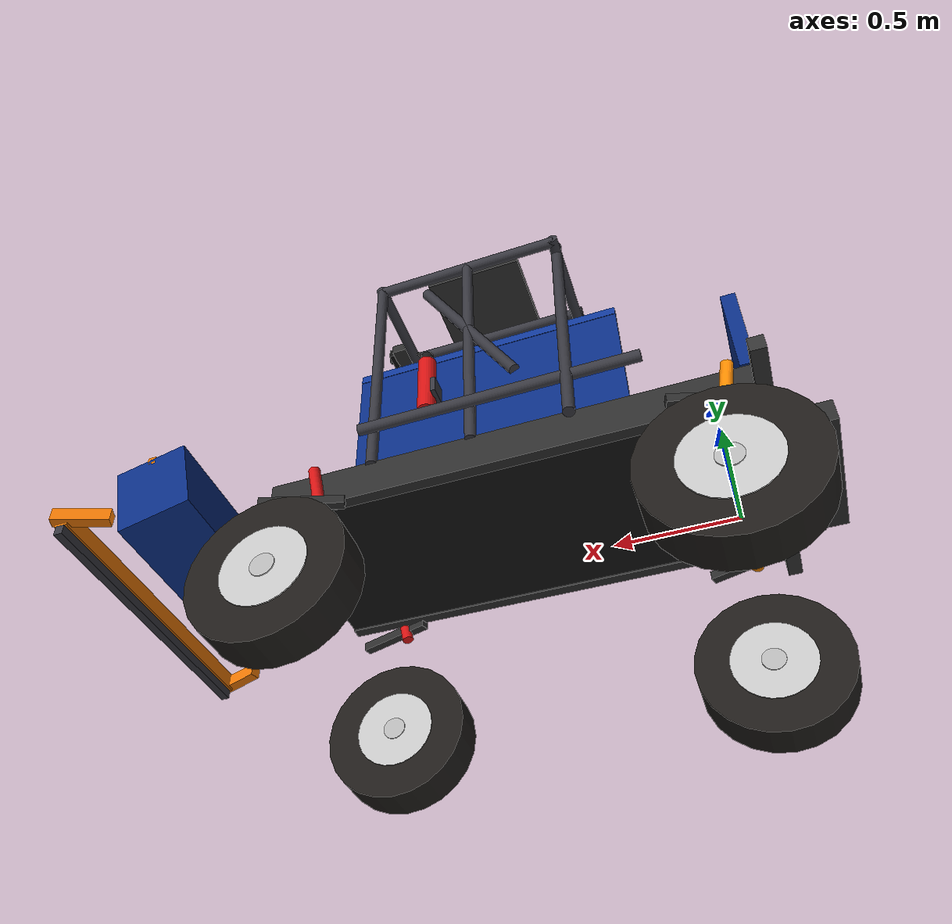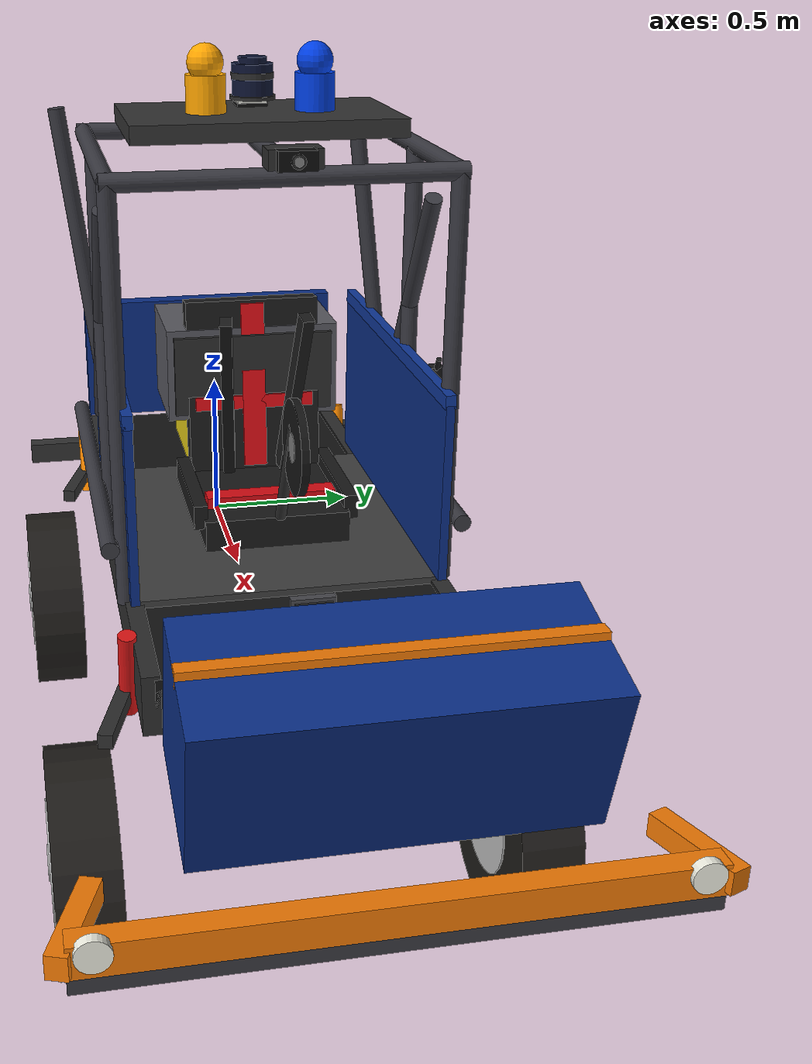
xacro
<?xml version="1.0"?>
<robot xmlns:xacro="http://www.ros.org/wiki/xacro" name="abaja_buggy">

  <!-- Color/material definitions (must be first) -->
  <xacro:include filename="$(find abaja_description)/urdf/materials.xacro"/>

  <!-- Chassis, roll cage, body, seat, beacons, electronics -->
  <xacro:include filename="$(find abaja_description)/urdf/chassis.xacro"/>

  <!-- Four wheels with steering and drive joints -->
  <xacro:include filename="$(find abaja_description)/urdf/wheels.xacro"/>

  <!-- Sensor mounts: camera, lidar, imu -->
  <xacro:include filename="$(find abaja_description)/urdf/sensors.xacro"/>

  <!-- Chassis -->
  <gazebo reference="chassis_link">
  </gazebo>

  <!-- Floor pan -->
  <gazebo reference="floor_pan_link">
  </gazebo>

  <!-- Body panels -->
  <gazebo reference="left_body_panel_link">
  </gazebo>
  <gazebo reference="right_body_panel_link">
  </gazebo>

  <!-- Roll cage elements -->
  <gazebo reference="roll_cage_front_hoop">
  </gazebo>
  <gazebo reference="roll_cage_rear_hoop">
  </gazebo>
  <gazebo reference="roll_cage_top_bar">
  </gazebo>
  <gazebo reference="roll_cage_left_pillar">
  </gazebo>
  <gazebo reference="roll_cage_right_pillar">
  </gazebo>
  <gazebo reference="roll_cage_left_rear_pillar">
  </gazebo>
  <gazebo reference="roll_cage_right_rear_pillar">
  </gazebo>
  <gazebo reference="roll_cage_left_side_bar">
  </gazebo>
  <gazebo reference="roll_cage_right_side_bar">
  </gazebo>

  <!-- Beacons -->
  <gazebo reference="asal_beacon_link">
  </gazebo>
  <gazebo reference="asal_beacon_dome">
  </gazebo>
  <gazebo reference="warning_beacon_link">
  </gazebo>
  <gazebo reference="warning_beacon_dome">
  </gazebo>

  <!-- Wheels -->
  <gazebo reference="front_left_wheel_link">
    <mu1>1.0</mu1>
    <mu2>1.0</mu2>
    <kp>1000000.0</kp>
    <kd>100.0</kd>
    <minDepth>0.001</minDepth>
  </gazebo>
  <gazebo reference="front_right_wheel_link">
    <mu1>1.0</mu1>
    <mu2>1.0</mu2>
    <kp>1000000.0</kp>
    <kd>100.0</kd>
    <minDepth>0.001</minDepth>
  </gazebo>
  <gazebo reference="rear_left_wheel_link">
    <mu1>1.0</mu1>
    <mu2>1.0</mu2>
    <kp>1000000.0</kp>
    <kd>100.0</kd>
    <minDepth>0.001</minDepth>
  </gazebo>
  <gazebo reference="rear_right_wheel_link">
    <mu1>1.0</mu1>
    <mu2>1.0</mu2>
    <kp>1000000.0</kp>
    <kd>100.0</kd>
    <minDepth>0.001</minDepth>
  </gazebo>

  <!-- Seat -->
  <gazebo reference="seat_link">
  </gazebo>
  <gazebo reference="seat_backrest_link">
  </gazebo>

  <!-- Battery and Electronics -->
  <gazebo reference="battery_box_link">
  </gazebo>
  <gazebo reference="electronics_box_link">
  </gazebo>

  <!-- Sensors -->
  <gazebo reference="camera_link">
  </gazebo>
  <gazebo reference="camera_mount_link">
  </gazebo>
  <!-- LiDAR — dark navy blue -->
  <gazebo reference="lidar_link">
  </gazebo>
  <!-- Starkenn Orion Radar — visual only, no Gazebo plugin -->
  <gazebo reference="radar_link">
  </gazebo>
  <!-- GPS — off-white patch antenna -->
  <gazebo reference="gps_link">
  </gazebo>
  <!-- IMU — green PCB -->
  <gazebo reference="imu_link">
  </gazebo>

  <!-- Hardware modules (visual-only, no Gazebo simulation plugins) -->
  <!-- Kvaser CAN network module -->
  <gazebo reference="kvaser_can_link">
  </gazebo>
  <!-- ESP32-C6 module — green PCB -->
  <gazebo reference="esp32_c6_link">
  </gazebo>
  <!-- SN65HVD230 CAN transceiver — blue-green -->
  <gazebo reference="sn65hvd230_link">
  </gazebo>

  <!-- Safety equipment -->
  <!-- Fire extinguisher — red -->
  <gazebo reference="fire_extinguisher_link">
  </gazebo>
  <!-- Harness straps — dark grey/black -->
  <gazebo reference="harness_left_strap">
  </gazebo>
  <gazebo reference="harness_right_strap">
  </gazebo>
  <gazebo reference="harness_lap_belt">
  </gazebo>

  <!-- Suspension springs -->
  <gazebo reference="front_left_spring">
  </gazebo>
  <gazebo reference="front_right_spring">
  </gazebo>
  <gazebo reference="rear_left_spring">
  </gazebo>
  <gazebo reference="rear_right_spring">
  </gazebo>

  <!-- New visual elements - bumpers, nose, guard -->
  <gazebo reference="front_nose_link">
  </gazebo>
  <gazebo reference="rear_guard_link">
  </gazebo>
  <gazebo reference="front_bumper_link">
  </gazebo>
  <gazebo reference="rear_bumper_link">
  </gazebo>
  <gazebo reference="front_left_light_link">
  </gazebo>
  <gazebo reference="front_right_light_link">
  </gazebo>
  <gazebo reference="left_tail_light">
  </gazebo>
  <gazebo reference="right_tail_light">
  </gazebo>
  <gazebo reference="roll_cage_front_left_upright">
  </gazebo>
  <gazebo reference="roll_cage_front_right_upright">
  </gazebo>
  <gazebo reference="roll_cage_diag_left">
  </gazebo>
  <gazebo reference="roll_cage_diag_right">
  </gazebo>
  <gazebo reference="side_protection_left">
  </gazebo>
  <gazebo reference="side_protection_right">
  </gazebo>

  <!-- Tail lights -->
  <gazebo reference="left_tail_light">
  </gazebo>
  <gazebo reference="right_tail_light">
  </gazebo>

  <gazebo>
    <plugin filename="gz-sim-diff-drive-system"
            name="gz::sim::systems::DiffDrive">
      <left_joint>rear_left_wheel_joint</left_joint>
      <right_joint>rear_right_wheel_joint</right_joint>
      <wheel_separation>1.25</wheel_separation>
      <wheel_radius>0.32</wheel_radius>
      <max_linear_acceleration>2.0</max_linear_acceleration>
      <odom_publish_frequency>50</odom_publish_frequency>
      <topic>cmd_vel</topic>
      <odom_topic>odom</odom_topic>
      <frame_id>odom</frame_id>
      <child_frame_id>base_link</child_frame_id>
    </plugin>
  </gazebo>

  <gazebo>
    <plugin filename="gz-sim-joint-state-publisher-system"
            name="gz::sim::systems::JointStatePublisher">
      <joint_name>front_left_wheel_joint</joint_name>
      <joint_name>front_right_wheel_joint</joint_name>
      <joint_name>rear_left_wheel_joint</joint_name>
      <joint_name>rear_right_wheel_joint</joint_name>
      <joint_name>front_left_steering_joint</joint_name>
      <joint_name>front_right_steering_joint</joint_name>
    </plugin>
  </gazebo>

</robot>

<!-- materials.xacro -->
<robot xmlns:xacro="http://www.ros.org/wiki/xacro" name="abaja_materials">

  <!-- ======================================================================
    CHASSIS AND STRUCTURAL COLORS
  ====================================================================== -->
  <!-- Main chassis / frame - near black -->
  <material name="Black">
    <color rgba="0.08 0.08 0.08 1.0"/>
  </material>

  <!-- Dark grey for structural/subframe elements -->
  <material name="DarkGrey">
    <color rgba="0.18 0.18 0.18 1.0"/>
  </material>

  <!-- Medium grey for metallic parts -->
  <material name="Grey">
    <color rgba="0.5 0.5 0.5 1.0"/>
  </material>

  <!-- Light grey for wheel rims and hub centers -->
  <material name="LightGrey">
    <color rgba="0.72 0.72 0.72 1.0"/>
  </material>

  <!-- ======================================================================
    ROLL CAGE AND FRAME
  ====================================================================== -->
  <!-- Roll cage - dark steel tube look -->
  <material name="Steel">
    <color rgba="0.22 0.22 0.25 1.0"/>
  </material>

  <!-- ======================================================================
    BODY PANEL COLORS - Team distinctive color
  ====================================================================== -->
  <!-- Side body panels: deep blue (team color, easily visible) -->
  <material name="BodyPanel">
    <color rgba="0.04 0.18 0.52 1.0"/>
  </material>

  <!-- Floor pan - dark grey -->
  <material name="FloorGrey">
    <color rgba="0.25 0.25 0.25 1.0"/>
  </material>

  <!-- Front nose panel - slightly lighter blue for differentiation -->
  <material name="FrontNose">
    <color rgba="0.06 0.22 0.60 1.0"/>
  </material>

  <!-- Rear guard / rear bumper panel -->
  <material name="RearGuard">
    <color rgba="0.04 0.18 0.52 1.0"/>
  </material>

  <!-- ======================================================================
    BUMPERS
  ====================================================================== -->
  <!-- Front bumper - safety orange accent for clear front identification -->
  <material name="BumperOrange">
    <color rgba="0.95 0.48 0.02 1.0"/>
  </material>

  <!-- Rear bumper - dark structural steel -->
  <material name="BumperGrey">
    <color rgba="0.20 0.20 0.20 1.0"/>
  </material>

  <!-- ======================================================================
    WHEEL AND TIRE COLORS
  ====================================================================== -->
  <!-- Tire rubber - near black with slight brown for realism -->
  <material name="TireBlack">
    <color rgba="0.12 0.11 0.10 1.0"/>
  </material>

  <!-- Wheel rim - silver/aluminium -->
  <material name="WheelRim">
    <color rgba="0.78 0.78 0.78 1.0"/>
  </material>

  <!-- ======================================================================
    SUSPENSION COLORS
  ====================================================================== -->
  <!-- Front spring/shock - Red (visible in real buggy) -->
  <material name="Red">
    <color rgba="0.85 0.08 0.08 1.0"/>
  </material>

  <!-- Rear spring/shock - Orange -->
  <material name="Orange">
    <color rgba="1.0 0.55 0.0 1.0"/>
  </material>

  <!-- ======================================================================
    BEACON AND LIGHT COLORS
  ====================================================================== -->
  <!-- Blue ASAL autonomous beacon -->
  <material name="Blue">
    <color rgba="0.0 0.25 0.9 1.0"/>
  </material>

  <!-- Amber warning beacon -->
  <material name="Amber">
    <color rgba="1.0 0.65 0.0 0.9"/>
  </material>

  <!-- Tail lights - bright red -->
  <material name="TailRed">
    <color rgba="0.9 0.02 0.02 1.0"/>
  </material>

  <!-- Front indicator lights - white -->
  <material name="FrontLight">
    <color rgba="0.95 0.95 0.90 1.0"/>
  </material>

  <!-- ======================================================================
    SENSOR COLORS
  ====================================================================== -->
  <!-- Camera housing - near black -->
  <material name="CameraBlack">
    <color rgba="0.05 0.05 0.05 1.0"/>
  </material>

  <!-- LiDAR - dark navy/blue-black -->
  <material name="LidarBlue">
    <color rgba="0.05 0.08 0.20 1.0"/>
  </material>

  <!-- Radar - dark grey -->
  <material name="RadarGrey">
    <color rgba="0.28 0.28 0.30 1.0"/>
  </material>

  <!-- Sensor mount bar - dark grey -->
  <material name="SensorBar">
    <color rgba="0.20 0.20 0.20 1.0"/>
  </material>

  <!-- ======================================================================
    ELECTRONICS AND BATTERY
  ====================================================================== -->
  <!-- Electronics box - medium grey -->
  <material name="ElectronicsGrey">
    <color rgba="0.35 0.35 0.38 1.0"/>
  </material>

  <!-- Battery box - safety yellow -->
  <material name="BatteryYellow">
    <color rgba="0.92 0.82 0.10 1.0"/>
  </material>

  <!-- ======================================================================
    SEAT AND COCKPIT
  ====================================================================== -->
  <!-- Seat - near black -->
  <material name="SeatBlack">
    <color rgba="0.10 0.10 0.10 1.0"/>
  </material>

  <!-- Seat harness stripe - red -->
  <material name="SeatRed">
    <color rgba="0.85 0.05 0.08 1.0"/>
  </material>

  <!-- Steering wheel -->
  <material name="SteeringBlack">
    <color rgba="0.08 0.08 0.08 1.0"/>
  </material>

  <!-- ESP32-C6 module — green PCB colour -->
  <material name="PCBGreen">
    <color rgba="0.13 0.55 0.13 1.0"/>
  </material>

  <!-- SN65HVD230 CAN transceiver — blue/green PCB -->
  <material name="PCBBlue">
    <color rgba="0.05 0.35 0.60 1.0"/>
  </material>

  <!-- Kvaser CAN network module — dark charcoal/black -->
  <material name="CANModule">
    <color rgba="0.15 0.15 0.16 1.0"/>
  </material>

  <!-- GPS antenna/receiver — off-white/light grey -->
  <material name="GPSWhite">
    <color rgba="0.88 0.88 0.85 1.0"/>
  </material>

  <!-- IMU sensor body — light olive green -->
  <material name="IMUGreen">
    <color rgba="0.30 0.50 0.20 1.0"/>
  </material>

  <!-- ======================================================================
    SAFETY EQUIPMENT
  ====================================================================== -->

  <!-- Fire extinguisher body — safety red -->
  <material name="FireExtRed">
    <color rgba="0.85 0.08 0.08 1.0"/>
  </material>

  <!-- Fire extinguisher head/nozzle — black -->
  <material name="FireExtHead">
    <color rgba="0.10 0.10 0.10 1.0"/>
  </material>

</robot>

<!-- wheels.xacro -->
<robot xmlns:xacro="http://www.ros.org/wiki/xacro" name="abaja_wheels">

  <!-- ======================================================================
    WHEEL PROPERTIES
  ====================================================================== -->
  <xacro:property name="wheel_radius" value="0.32"/>
  <xacro:property name="wheel_width" value="0.18"/>
  <xacro:property name="wheel_mass" value="8.0"/>
  <xacro:property name="wheelbase" value="1.65"/>
  <xacro:property name="track_width" value="1.25"/>

  <!-- Steering limits (front wheels) -->
  <xacro:property name="steering_limit" value="0.6"/>  <!-- ~34 degrees -->

  <xacro:macro name="wheel_assembly" params="prefix x_pos y_pos steerable">

    <link name="${prefix}_steering_link">
      <!-- Small hub/knuckle visualization -->
      <visual>
        <origin xyz="0 0 0" rpy="0 0 0"/>
        <geometry>
          <cylinder radius="0.04" length="0.06"/>
        </geometry>
        <material name="DarkGrey"/>
      </visual>
      <collision>
        <origin xyz="0 0 0" rpy="0 0 0"/>
        <geometry>
          <cylinder radius="0.04" length="0.06"/>
        </geometry>
      </collision>
      <inertial>
        <mass value="1.0"/>
        <origin xyz="0 0 0" rpy="0 0 0"/>
        <inertia ixx="0.001" ixy="0" ixz="0" iyy="0.001" iyz="0" izz="0.001"/>
      </inertial>
    </link>

    <!-- Steering joint: revolute for front, fixed for rear -->
    <xacro:if value="${steerable}">
      <joint name="${prefix}_steering_joint" type="revolute">
        <parent link="chassis_link"/>
        <child link="${prefix}_steering_link"/>
        <!-- chassis_link is elevated by (ground_clearance + wheel_radius), so we must drop Z down by the same amount -->
        <origin xyz="${x_pos} ${y_pos} -0.57" rpy="0 0 0"/>
        <axis xyz="0 0 1"/>
        <limit lower="-${steering_limit}" upper="${steering_limit}"
               effort="100.0" velocity="1.0"/>
        <dynamics damping="0.1" friction="0.1"/>
      </joint>
    </xacro:if>
    <xacro:unless value="${steerable}">
      <joint name="${prefix}_steering_joint" type="fixed">
        <parent link="chassis_link"/>
        <child link="${prefix}_steering_link"/>
        <origin xyz="${x_pos} ${y_pos} -0.57" rpy="0 0 0"/>
      </joint>
    </xacro:unless>

    <link name="${prefix}_wheel_link">
      <!-- Tire (outer black rubber) -->
      <visual>
        <origin xyz="0 0 0" rpy="${pi/2} 0 0"/>
        <geometry>
          <cylinder radius="${wheel_radius}" length="${wheel_width}"/>
        </geometry>
        <material name="TireBlack"/>
      </visual>
      <!-- Rim (inner silver disc) -->
      <visual>
        <origin xyz="0 0 0" rpy="${pi/2} 0 0"/>
        <geometry>
          <cylinder radius="${wheel_radius * 0.55}" length="${wheel_width + 0.01}"/>
        </geometry>
        <material name="WheelRim"/>
      </visual>
      <!-- Hub cap center -->
      <visual>
        <origin xyz="0 0 0" rpy="${pi/2} 0 0"/>
        <geometry>
          <cylinder radius="0.05" length="${wheel_width + 0.02}"/>
        </geometry>
        <material name="LightGrey"/>
      </visual>
      <collision>
        <origin xyz="0 0 0" rpy="${pi/2} 0 0"/>
        <geometry>
          <cylinder radius="${wheel_radius}" length="${wheel_width}"/>
        </geometry>
      </collision>
      <inertial>
        <mass value="${wheel_mass}"/>
        <origin xyz="0 0 0" rpy="0 0 0"/>
        <!-- Inertia for a solid cylinder (axis along Y after rotation) -->
        <inertia
          ixx="${(1.0/12.0) * wheel_mass * (3*wheel_radius*wheel_radius + wheel_width*wheel_width)}"
          ixy="0.0"
          ixz="0.0"
          iyy="${(1.0/12.0) * wheel_mass * (3*wheel_radius*wheel_radius + wheel_width*wheel_width)}"
          iyz="0.0"
          izz="${(1.0/2.0) * wheel_mass * wheel_radius * wheel_radius}"/>
      </inertial>
    </link>

    <!-- Wheel rotation joint (continuous = unlimited rotation) -->
    <joint name="${prefix}_wheel_joint" type="continuous">
      <parent link="${prefix}_steering_link"/>
      <child link="${prefix}_wheel_link"/>
      <origin xyz="0 0 0" rpy="0 0 0"/>
      <axis xyz="0 1 0"/>
      <dynamics damping="0.5" friction="0.3"/>
    </joint>

  </xacro:macro>

  <!-- Front Left Wheel - steerable -->
  <xacro:wheel_assembly
    prefix="front_left"
    x_pos="${wheelbase}"
    y_pos="${track_width/2}"
    steerable="true"/>

  <!-- Front Right Wheel - steerable -->
  <xacro:wheel_assembly
    prefix="front_right"
    x_pos="${wheelbase}"
    y_pos="-${track_width/2}"
    steerable="true"/>

  <!-- Rear Left Wheel - non-steerable (drive wheel) -->
  <xacro:wheel_assembly
    prefix="rear_left"
    x_pos="0"
    y_pos="${track_width/2}"
    steerable="false"/>

  <!-- Rear Right Wheel - non-steerable (drive wheel) -->
  <xacro:wheel_assembly
    prefix="rear_right"
    x_pos="0"
    y_pos="-${track_width/2}"
    steerable="false"/>

</robot>

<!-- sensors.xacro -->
<robot xmlns:xacro="http://www.ros.org/wiki/xacro" name="abaja_sensors">

  <!-- ======================================================================
    PROPERTIES (must match chassis.xacro values)
  ====================================================================== -->
  <xacro:property name="wheelbase"        value="1.65"/>
  <xacro:property name="chassis_height"   value="0.15"/>
  <xacro:property name="cage_height"      value="1.15"/>
  <xacro:property name="ground_clearance" value="0.25"/>

  <link name="camera_mount_link">
    <visual>
      <origin xyz="0 0 0" rpy="0 0 0"/>
      <geometry><box size="0.08 0.14 0.05"/></geometry>
      <material name="DarkGrey"/>
    </visual>
    <collision>
      <origin xyz="0 0 0" rpy="0 0 0"/>
      <geometry><box size="0.08 0.14 0.05"/></geometry>
    </collision>
    <inertial>
      <mass value="0.3"/>
      <origin xyz="0 0 0" rpy="0 0 0"/>
      <inertia ixx="0.0001" ixy="0" ixz="0" iyy="0.0001" iyz="0" izz="0.0001"/>
    </inertial>
  </link>

  <joint name="chassis_to_camera_mount" type="fixed">
    <parent link="chassis_link"/>
    <child  link="camera_mount_link"/>
    <origin xyz="${wheelbase/2 + 0.62} 0 ${chassis_height/2 + cage_height + 0.06}" rpy="0 0 0"/>
  </joint>

  <!-- Camera sensor body — forward facing -->
  <link name="camera_link">
    <!-- Body -->
    <visual>
      <origin xyz="0 0 0" rpy="0 0 0"/>
      <geometry><box size="0.05 0.10 0.05"/></geometry>
      <material name="CameraBlack"/>
    </visual>
    <!-- Lens barrel -->
    <visual>
      <origin xyz="0.030 0 0" rpy="0 ${pi/2} 0"/>
      <geometry><cylinder radius="0.018" length="0.015"/></geometry>
      <material name="DarkGrey"/>
    </visual>
    <!-- Lens glass -->
    <visual>
      <origin xyz="0.037 0 0" rpy="0 ${pi/2} 0"/>
      <geometry><cylinder radius="0.013" length="0.006"/></geometry>
      <material name="Grey"/>
    </visual>
    <collision>
      <origin xyz="0 0 0" rpy="0 0 0"/>
      <geometry><box size="0.05 0.10 0.05"/></geometry>
    </collision>
    <inertial>
      <mass value="0.15"/>
      <origin xyz="0 0 0" rpy="0 0 0"/>
      <inertia ixx="0.00005" ixy="0" ixz="0" iyy="0.00005" iyz="0" izz="0.00005"/>
    </inertial>
  </link>

  <joint name="camera_mount_to_camera" type="fixed">
    <parent link="camera_mount_link"/>
    <child  link="camera_link"/>
    <origin xyz="0.04 0 0" rpy="0 0 0"/>
  </joint>

  <!-- Camera optical frame (ROS convention: Z forward, X right, Y down) -->
  <link name="camera_optical_frame">
    <inertial>
      <mass value="0.001"/>
      <origin xyz="0 0 0" rpy="0 0 0"/>
      <inertia ixx="0.001" ixy="0" ixz="0" iyy="0.001" iyz="0" izz="0.001"/>
    </inertial>
  </link>

  <joint name="camera_to_optical" type="fixed">
    <parent link="camera_link"/>
    <child  link="camera_optical_frame"/>
    <origin xyz="0 0 0" rpy="-1.5708 0 -1.5708"/>
  </joint>

  <!-- Gazebo camera sensor plugin (ACTIVE — publishes /front_camera/image_raw) -->
  <gazebo reference="camera_link">
    <sensor type="camera" name="front_camera">
      <pose>0.045 0 0 0 0 0</pose>
      <always_on>true</always_on>
      <update_rate>30.0</update_rate>
      <camera name="front_camera">
        <horizontal_fov>1.3962634</horizontal_fov>
        <image>
          <width>640</width>
          <height>480</height>
          <format>R8G8B8</format>
        </image>
        <clip>
          <near>0.02</near>
          <far>300</far>
        </clip>
      </camera>
      <topic>front_camera/image_raw</topic>
      <gz_frame_id>camera_optical_frame</gz_frame_id>
    </sensor>
  </gazebo>

  <link name="lidar_link">
    <!-- Main LiDAR body (cylindrical housing — Velodyne VLP-16 style) -->
    <visual>
      <origin xyz="0 0 0" rpy="0 0 0"/>
      <geometry><cylinder radius="0.058" length="0.085"/></geometry>
      <material name="LidarBlue"/>
    </visual>
    <!-- Base mounting ring -->
    <visual>
      <origin xyz="0 0 -0.048" rpy="0 0 0"/>
      <geometry><cylinder radius="0.065" length="0.010"/></geometry>
      <material name="DarkGrey"/>
    </visual>
    <!-- Top spinning head dome -->
    <visual>
      <origin xyz="0 0 0.050" rpy="0 0 0"/>
      <geometry><cylinder radius="0.040" length="0.020"/></geometry>
      <material name="LidarBlue"/>
    </visual>
    <!-- Scan window strip (lighter, visible band) -->
    <visual>
      <origin xyz="0 0 0.010" rpy="0 0 0"/>
      <geometry><cylinder radius="0.060" length="0.018"/></geometry>
      <material name="DarkGrey"/>
    </visual>
    <collision>
      <origin xyz="0 0 0" rpy="0 0 0"/>
      <geometry><cylinder radius="0.065" length="0.10"/></geometry>
    </collision>
    <inertial>
      <mass value="0.83"/>
      <origin xyz="0 0 0" rpy="0 0 0"/>
      <inertia ixx="0.001" ixy="0" ixz="0" iyy="0.001" iyz="0" izz="0.001"/>
    </inertial>
  </link>

  <joint name="sensor_bar_to_lidar" type="fixed">
    <parent link="sensor_mount_bar"/>
    <child  link="lidar_link"/>
    <!-- Centre-rear of sensor bar, elevated above bar surface -->
    <origin xyz="-0.08 0 0.10" rpy="0 0 0"/>
  </joint>

  <gazebo reference="lidar_link">
    <sensor name="lidar_sensor" type="gpu_lidar">
      <always_on>true</always_on>
      <update_rate>10</update_rate>
      <topic>lidar/scan</topic>
      <gz_frame_id>lidar_link</gz_frame_id>
      <lidar>
        <scan>
          <horizontal>
            <samples>360</samples>
            <resolution>1</resolution>
            <min_angle>-3.14159</min_angle>
            <max_angle>3.14159</max_angle>
          </horizontal>
          <vertical>
            <samples>1</samples>
            <resolution>1</resolution>
            <min_angle>0</min_angle>
            <max_angle>0</max_angle>
          </vertical>
        </scan>
        <range>
          <min>0.10</min>
          <max>30.0</max>
          <resolution>0.01</resolution>
        </range>
        <noise>
          <type>gaussian</type>
          <mean>0.0</mean>
          <stddev>0.01</stddev>
        </noise>
      </lidar>
    </sensor>
  </gazebo>

  <!-- Starkenn Orion Radar -->
  <link name="radar_link">
    <!-- Main radar sensor face (flat rectangular module) -->
    <visual>
      <origin xyz="0 0 0" rpy="0 0 0"/>
      <geometry><box size="0.025 0.12 0.09"/></geometry>
      <material name="RadarGrey"/>
    </visual>
    <!-- Radar front face (slightly protruding) -->
    <visual>
      <origin xyz="0.015 0 0" rpy="0 0 0"/>
      <geometry><box size="0.010 0.10 0.07"/></geometry>
      <material name="DarkGrey"/>
    </visual>
    <!-- Starkenn logo placeholder — small white strip -->
    <visual>
      <origin xyz="0.020 0 0.02" rpy="0 0 0"/>
      <geometry><box size="0.005 0.06 0.015"/></geometry>
      <material name="LightGrey"/>
    </visual>
    <!-- Mounting bracket -->
    <visual>
      <origin xyz="-0.02 0 -0.06" rpy="0 0 0"/>
      <geometry><box size="0.04 0.06 0.02"/></geometry>
      <material name="Steel"/>
    </visual>
    <collision>
      <origin xyz="0 0 0" rpy="0 0 0"/>
      <geometry><box size="0.025 0.12 0.09"/></geometry>
    </collision>
    <inertial>
      <mass value="0.4"/>
      <origin xyz="0 0 0" rpy="0 0 0"/>
      <inertia ixx="0.0002" ixy="0" ixz="0" iyy="0.0002" iyz="0" izz="0.0002"/>
    </inertial>
  </link>

  <!-- Front bumper/nose area, centred, forward-facing -->
  <joint name="chassis_to_radar" type="fixed">
    <parent link="chassis_link"/>
    <child  link="radar_link"/>
    <origin xyz="${wheelbase/2 + 0.90} 0 ${chassis_height/2 + 0.10}" rpy="0 0 0"/>
  </joint>

  <link name="gps_link">
    <!-- GPS patch antenna (flat white square — typical automotive GPS) -->
    <visual>
      <origin xyz="0 0 0" rpy="0 0 0"/>
      <geometry><box size="0.08 0.08 0.018"/></geometry>
      <material name="GPSWhite"/>
    </visual>
    <!-- Antenna element (raised centre bump) -->
    <visual>
      <origin xyz="0 0 0.015" rpy="0 0 0"/>
      <geometry><cylinder radius="0.015" length="0.012"/></geometry>
      <material name="GPSWhite"/>
    </visual>
    <!-- Base housing (black) -->
    <visual>
      <origin xyz="0 0 -0.012" rpy="0 0 0"/>
      <geometry><box size="0.085 0.085 0.012"/></geometry>
      <material name="CameraBlack"/>
    </visual>
    <collision>
      <origin xyz="0 0 0" rpy="0 0 0"/>
      <geometry><box size="0.09 0.09 0.03"/></geometry>
    </collision>
    <inertial>
      <mass value="0.10"/>
      <origin xyz="0 0 0" rpy="0 0 0"/>
      <inertia ixx="0.00005" ixy="0" ixz="0" iyy="0.00005" iyz="0" izz="0.00008"/>
    </inertial>
  </link>

  <!-- Sky-facing on top of sensor bar, rear section -->
  <joint name="sensor_bar_to_gps" type="fixed">
    <parent link="sensor_mount_bar"/>
    <child  link="gps_link"/>
    <!-- Rear of sensor bar, centred, slightly elevated above bar surface -->
    <origin xyz="-0.12 0 0.04" rpy="0 0 0"/>
  </joint>

  <gazebo reference="gps_link">
    <sensor name="gps_sensor" type="navsat">
      <always_on>true</always_on>
      <update_rate>10</update_rate>
      <topic>gps/fix</topic>
      <gz_frame_id>gps_link</gz_frame_id>
    </sensor>
  </gazebo>

  <link name="imu_link">
    <!-- IMU PCB board (small, green) -->
    <visual>
      <origin xyz="0 0 0" rpy="0 0 0"/>
      <geometry><box size="0.04 0.04 0.012"/></geometry>
      <material name="IMUGreen"/>
    </visual>
    <!-- Chip on top (small black square) -->
    <visual>
      <origin xyz="0 0 0.010" rpy="0 0 0"/>
      <geometry><box size="0.012 0.012 0.008"/></geometry>
      <material name="CameraBlack"/>
    </visual>
    <collision>
      <origin xyz="0 0 0" rpy="0 0 0"/>
      <geometry><box size="0.04 0.04 0.015"/></geometry>
    </collision>
    <inertial>
      <mass value="0.05"/>
      <origin xyz="0 0 0" rpy="0 0 0"/>
      <inertia ixx="0.001" ixy="0" ixz="0" iyy="0.001" iyz="0" izz="0.001"/>
    </inertial>
  </link>

  <!-- Mounted near vehicle centre of gravity — on top of chassis frame, centred -->
  <joint name="chassis_to_imu" type="fixed">
    <parent link="chassis_link"/>
    <child  link="imu_link"/>
    <origin xyz="${wheelbase/2} 0 ${chassis_height/2 + 0.015}" rpy="0 0 0"/>
  </joint>

  <!-- Gazebo IMU plugin (ACTIVE — publishes /imu/data) -->
  <gazebo reference="imu_link">
    <sensor name="imu_sensor" type="imu">
      <always_on>true</always_on>
      <update_rate>200</update_rate>
      <topic>imu/data</topic>
      <gz_frame_id>imu_link</gz_frame_id>
      <imu>
        <angular_velocity>
          <x><noise type="gaussian"><mean>0</mean><stddev>0.009</stddev></noise></x>
          <y><noise type="gaussian"><mean>0</mean><stddev>0.009</stddev></noise></y>
          <z><noise type="gaussian"><mean>0</mean><stddev>0.009</stddev></noise></z>
        </angular_velocity>
        <linear_acceleration>
          <x><noise type="gaussian"><mean>0</mean><stddev>0.021</stddev></noise></x>
          <y><noise type="gaussian"><mean>0</mean><stddev>0.021</stddev></noise></y>
          <z><noise type="gaussian"><mean>0</mean><stddev>0.021</stddev></noise></z>
        </linear_acceleration>
      </imu>
    </sensor>
  </gazebo>

  <!-- Kvaser CAN network module -->
  <link name="kvaser_can_link">
    <!-- Main module body -->
    <visual>
      <origin xyz="0 0 0" rpy="0 0 0"/>
      <geometry><box size="0.10 0.06 0.025"/></geometry>
      <material name="CANModule"/>
    </visual>
    <!-- USB connector (silver) -->
    <visual>
      <origin xyz="0.055 0 0.005" rpy="0 0 0"/>
      <geometry><box size="0.015 0.020 0.010"/></geometry>
      <material name="LightGrey"/>
    </visual>
    <!-- DB9/DSUB connector (CAN side) -->
    <visual>
      <origin xyz="-0.055 0 0.005" rpy="0 0 0"/>
      <geometry><box size="0.015 0.030 0.015"/></geometry>
      <material name="DarkGrey"/>
    </visual>
    <collision>
      <origin xyz="0 0 0" rpy="0 0 0"/>
      <geometry><box size="0.10 0.06 0.025"/></geometry>
    </collision>
    <inertial>
      <mass value="0.15"/>
      <origin xyz="0 0 0" rpy="0 0 0"/>
      <inertia ixx="0.00005" ixy="0" ixz="0" iyy="0.0001" iyz="0" izz="0.0001"/>
    </inertial>
  </link>

  <!-- Inside electronics box area, near top -->
  <joint name="electronics_to_kvaser" type="fixed">
    <parent link="electronics_box_link"/>
    <child  link="kvaser_can_link"/>
    <origin xyz="0.0 0.10 0.10" rpy="0 0 0"/>
  </joint>

  <!-- ESP32-C6 module -->
  <link name="esp32_c6_link">
    <!-- PCB board (green) -->
    <visual>
      <origin xyz="0 0 0" rpy="0 0 0"/>
      <geometry><box size="0.036 0.025 0.005"/></geometry>
      <material name="PCBGreen"/>
    </visual>
    <!-- Antenna trace area (lighter green end of board) -->
    <visual>
      <origin xyz="0.020 0 0" rpy="0 0 0"/>
      <geometry><box size="0.010 0.025 0.004"/></geometry>
      <material name="PCBBlue"/>
    </visual>
    <!-- Main SoC chip (black) -->
    <visual>
      <origin xyz="-0.005 0 0.005" rpy="0 0 0"/>
      <geometry><box size="0.010 0.010 0.003"/></geometry>
      <material name="CameraBlack"/>
    </visual>
    <collision>
      <origin xyz="0 0 0" rpy="0 0 0"/>
      <geometry><box size="0.036 0.025 0.006"/></geometry>
    </collision>
    <inertial>
      <mass value="0.01"/>
      <origin xyz="0 0 0" rpy="0 0 0"/>
      <inertia ixx="0.001" ixy="0" ixz="0" iyy="0.001" iyz="0" izz="0.001"/>
    </inertial>
  </link>

  <!-- Adjacent to Kvaser CAN module inside electronics box -->
  <joint name="electronics_to_esp32" type="fixed">
    <parent link="electronics_box_link"/>
    <child  link="esp32_c6_link"/>
    <origin xyz="0.0 -0.10 0.10" rpy="0 0 0"/>
  </joint>

  <!-- SN65HVD230 CAN bus transceiver module -->
  <link name="sn65hvd230_link">
    <!-- Small module PCB (blue/green) -->
    <visual>
      <origin xyz="0 0 0" rpy="0 0 0"/>
      <geometry><box size="0.022 0.018 0.004"/></geometry>
      <material name="PCBBlue"/>
    </visual>
    <!-- IC chip (black, very small) -->
    <visual>
      <origin xyz="0 0 0.005" rpy="0 0 0"/>
      <geometry><box size="0.006 0.006 0.002"/></geometry>
      <material name="CameraBlack"/>
    </visual>
    <!-- Terminal connector pins -->
    <visual>
      <origin xyz="0.014 0 0" rpy="0 0 0"/>
      <geometry><box size="0.004 0.018 0.003"/></geometry>
      <material name="LightGrey"/>
    </visual>
    <collision>
      <origin xyz="0 0 0" rpy="0 0 0"/>
      <geometry><box size="0.022 0.018 0.006"/></geometry>
    </collision>
    <inertial>
      <mass value="0.005"/>
      <origin xyz="0 0 0" rpy="0 0 0"/>
      <inertia ixx="0.0011" ixy="0" ixz="0" iyy="0.0011" iyz="0" izz="0.0011"/>
    </inertial>
  </link>

  <!-- Next to ESP32-C6 inside electronics box (forms CAN chain with Kvaser + ESP32) -->
  <joint name="electronics_to_sn65hvd230" type="fixed">
    <parent link="electronics_box_link"/>
    <child  link="sn65hvd230_link"/>
    <origin xyz="0.0 -0.10 0.07" rpy="0 0 0"/>
  </joint>

</robot>
